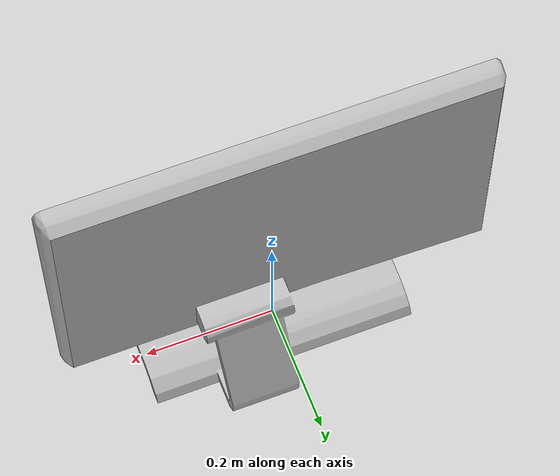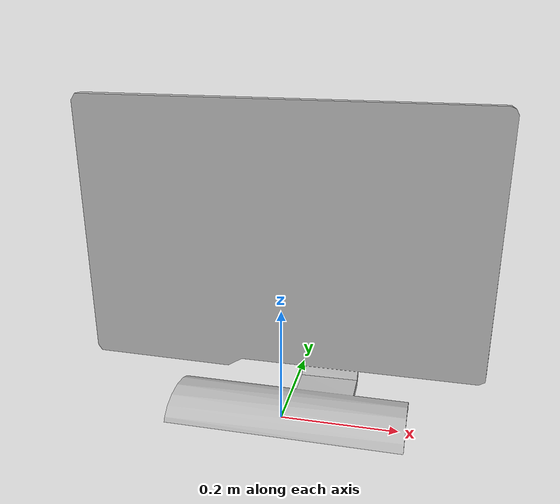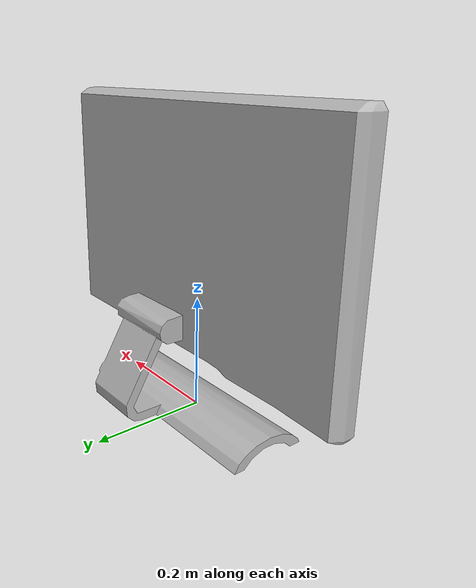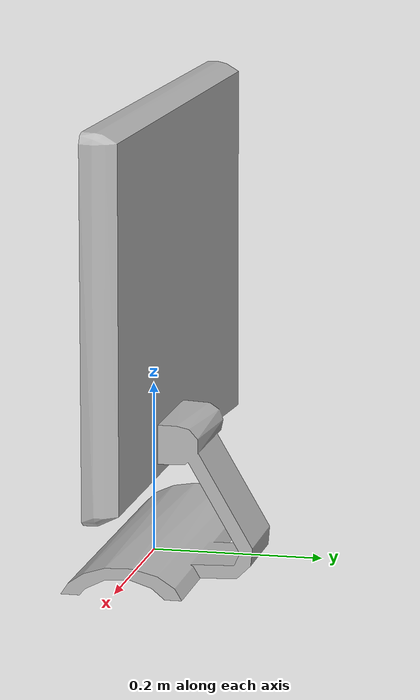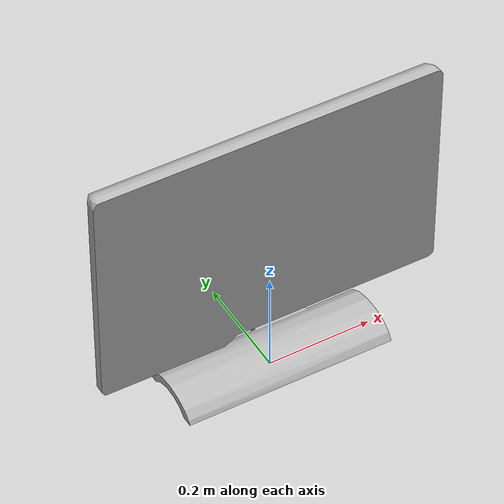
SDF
<?xml version='1.0'?>
<sdf version="1.5">

  <model name="computer_monitor">
    <static>true</static>
    <link name="link">

      <inertial>
        <mass>1.0</mass>
        <inertia>
          <ixx>0.05</ixx>       <!-- for a box: ixx = 0.083 * mass * (y*y + z*z) -->
          <ixy>0.0</ixy>       <!-- for a box: ixy = 0 -->
          <ixz>0.0</ixz>       <!-- for a box: ixz = 0 -->
          <iyy>0.05</iyy>       <!-- for a box: iyy = 0.083 * mass * (x*x + z*z) -->
          <iyz>0.0</iyz>       <!-- for a box: iyz = 0 -->
          <izz>0.05</izz>      <!-- for a box: izz = 0.083 * mass * (x*x + y*y) -->
        </inertia>
      </inertial>

      <collision name="collision">
        <geometry>
          <mesh>
            <uri>model://computer_monitor/computer_monitor.dae</uri>
          </mesh>
        </geometry>
      </collision>

      <visual name="visual">
        <geometry>
          <mesh>
            <uri>model://computer_monitor/computer_monitor.dae</uri>
          </mesh>
        </geometry>
      </visual>

    </link>
  </model>

</sdf>
